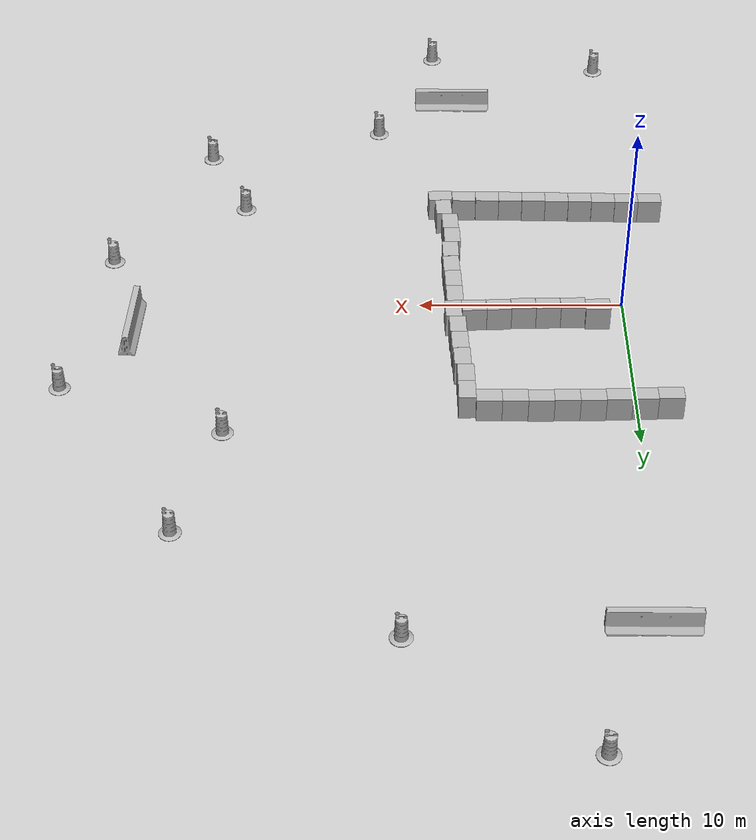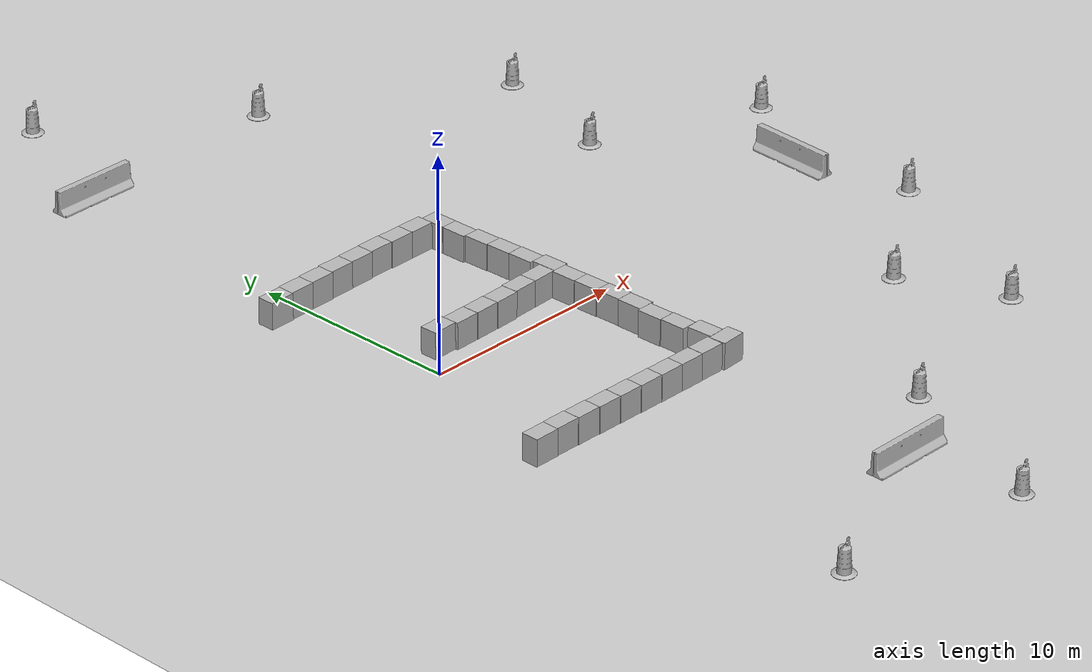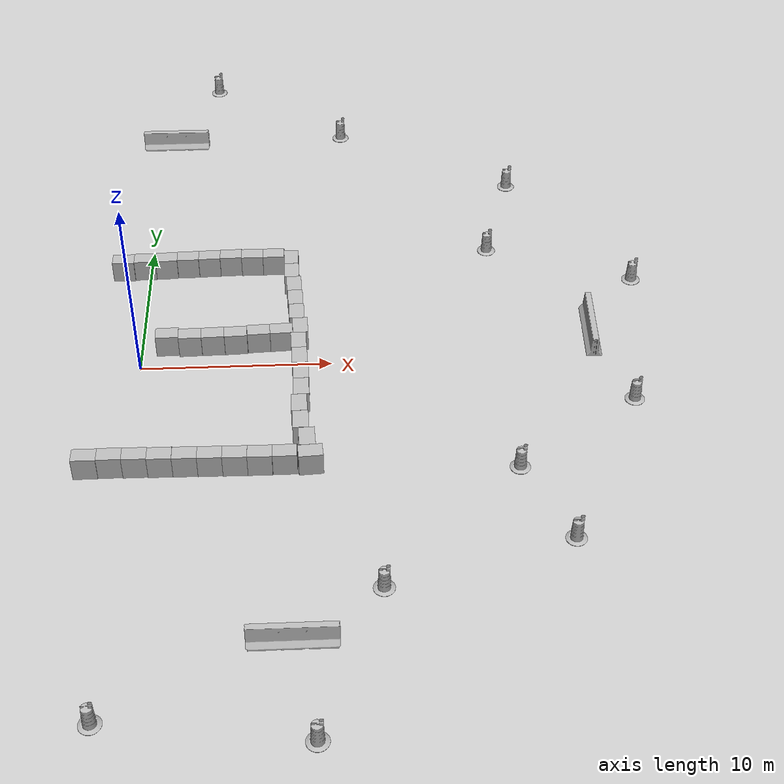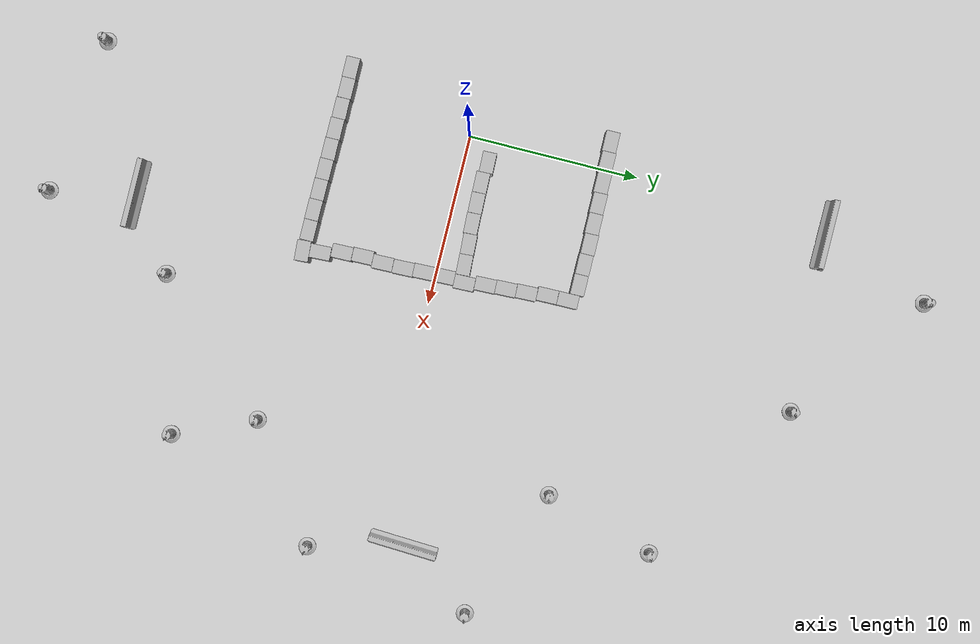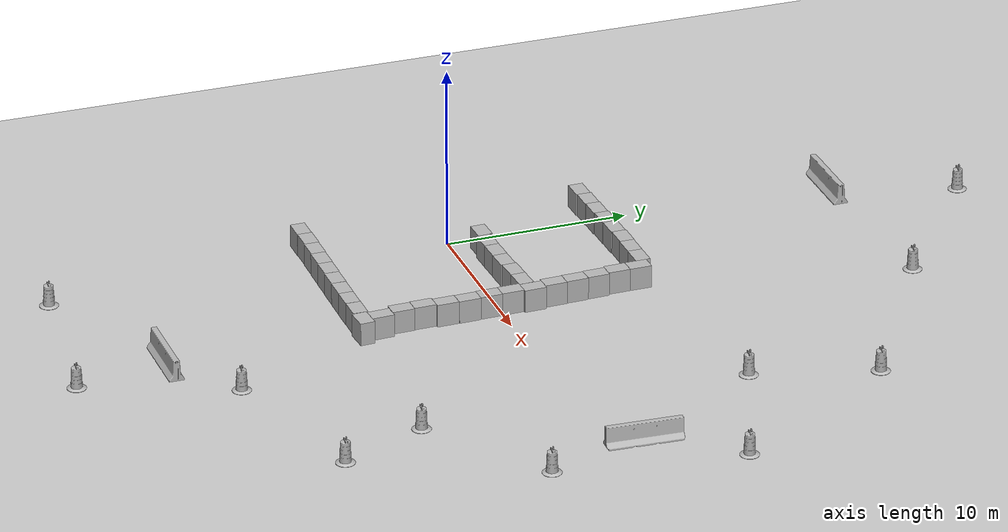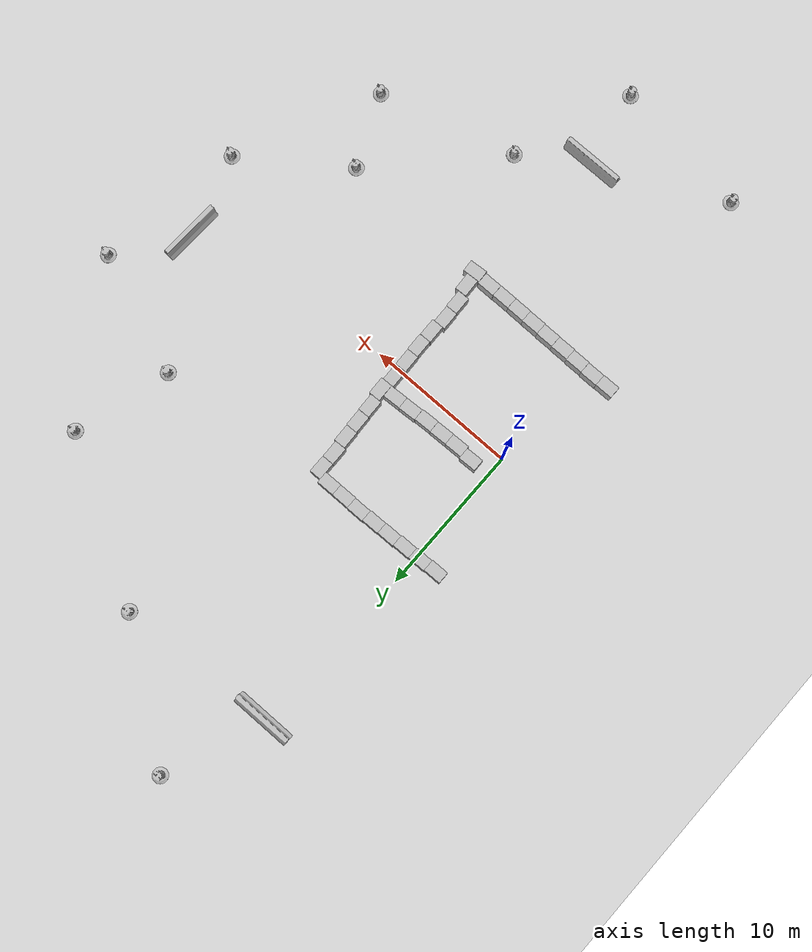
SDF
<sdf version="1.7">
 <world name="default">
  <model name="ground_plane">
   <static>1</static>
   <link name="link">
    <collision name="collision">
     <geometry><plane><normal>0 0 1</normal><size>100 100</size></plane></geometry>
     <surface><friction><ode><mu>100</mu><mu2>50</mu2></ode></friction></surface>
    </collision>
    <visual name="visual">
     <cast_shadows>0</cast_shadows>
     <geometry><plane><normal>0 0 1</normal><size>100 100</size></plane></geometry>
     <material>
      <script><uri>file://media/materials/scripts/gazebo.material</uri><name>Gazebo/Grey</name></script>
     </material>
    </visual>
    <velocity_decay><linear>0</linear><angular>0</angular></velocity_decay>
   </link>
  </model>
  <model name="Construction Barrel">
   <link name="link">
    <inertial>
     <pose>0 0 0.4 0 -0 0</pose>
     <mass>500</mass>
     <inertia><ixx>51.2096</ixx><iyy>51.2096</iyy><izz>25</izz><ixy>0</ixy><ixz>0</ixz><iyz>0</iyz></inertia>
    </inertial>
    <collision name="collision">
     <geometry><mesh><uri>model://construction_barrel/meshes/construction_barrel.dae</uri></mesh></geometry>
    </collision>
    <visual name="visual">
     <geometry><mesh><uri>model://construction_barrel/meshes/construction_barrel.dae</uri></mesh></geometry>
    </visual>
    <velocity_decay><linear>0</linear><angular>0</angular></velocity_decay>
   </link>
   <pose>-0.251054 -21.8083 0 0 0 -0.002184</pose>
   <static>0</static>
  </model>
  <model name="Construction Barrel_0">
   <link name="link">
    <inertial>
     <pose>0 0 0.4 0 -0 0</pose>
     <mass>500</mass>
     <inertia><ixx>51.2096</ixx><iyy>51.2096</iyy><izz>25</izz><ixy>0</ixy><ixz>0</ixz><iyz>0</iyz></inertia>
    </inertial>
    <collision name="collision">
     <geometry><mesh><uri>model://construction_barrel/meshes/construction_barrel.dae</uri></mesh></geometry>
    </collision>
    <visual name="visual">
     <geometry><mesh><uri>model://construction_barrel/meshes/construction_barrel.dae</uri></mesh></geometry>
    </visual>
    <velocity_decay><linear>0</linear><angular>0</angular></velocity_decay>
   </link>
   <pose>12.0468 -15.209 0 0 0 -0.002197</pose>
   <static>0</static>
  </model>
  <model name="Construction Barrel_1">
   <link name="link">
    <inertial>
     <pose>0 0 0.4 0 -0 0</pose>
     <mass>500</mass>
     <inertia><ixx>51.2096</ixx><iyy>51.2096</iyy><izz>25</izz><ixy>0</ixy><ixz>0</ixz><iyz>0</iyz></inertia>
    </inertial>
    <collision name="collision">
     <geometry><mesh><uri>model://construction_barrel/meshes/construction_barrel.dae</uri></mesh></geometry>
    </collision>
    <visual name="visual">
     <geometry><mesh><uri>model://construction_barrel/meshes/construction_barrel.dae</uri></mesh></geometry>
    </visual>
    <velocity_decay><linear>0</linear><angular>0</angular></velocity_decay>
   </link>
   <pose>18.9997 -7.99906 0 0 0 -0.00214</pose>
   <static>0</static>
  </model>
  <model name="Construction Barrel_3">
   <link name="link">
    <inertial>
     <pose>0 0 0.4 0 -0 0</pose>
     <mass>500</mass>
     <inertia><ixx>51.2096</ixx><iyy>51.2096</iyy><izz>25</izz><ixy>0</ixy><ixz>0</ixz><iyz>0</iyz></inertia>
    </inertial>
    <collision name="collision">
     <geometry><mesh><uri>model://construction_barrel/meshes/construction_barrel.dae</uri></mesh></geometry>
    </collision>
    <visual name="visual">
     <geometry><mesh><uri>model://construction_barrel/meshes/construction_barrel.dae</uri></mesh></geometry>
    </visual>
    <velocity_decay><linear>0</linear><angular>0</angular></velocity_decay>
   </link>
   <pose>19.1339 9.52281 0 0 0 -0.001991</pose>
   <static>0</static>
  </model>
  <model name="Construction Barrel_4">
   <link name="link">
    <inertial>
     <pose>0 0 0.4 0 -0 0</pose>
     <mass>500</mass>
     <inertia><ixx>51.2096</ixx><iyy>51.2096</iyy><izz>25</izz><ixy>0</ixy><ixz>0</ixz><iyz>0</iyz></inertia>
    </inertial>
    <collision name="collision">
     <geometry><mesh><uri>model://construction_barrel/meshes/construction_barrel.dae</uri></mesh></geometry>
    </collision>
    <visual name="visual">
     <geometry><mesh><uri>model://construction_barrel/meshes/construction_barrel.dae</uri></mesh></geometry>
    </visual>
    <velocity_decay><linear>0</linear><angular>0</angular></velocity_decay>
   </link>
   <pose>25.433 -3.40529 0 0 0 -0.001879</pose>
   <static>0</static>
  </model>
  <model name="Construction Barrel_10">
   <link name="link">
    <inertial>
     <pose>0 0 0.4 0 -0 0</pose>
     <mass>500</mass>
     <inertia><ixx>51.2096</ixx><iyy>51.2096</iyy><izz>25</izz><ixy>0</ixy><ixz>0</ixz><iyz>0</iyz></inertia>
    </inertial>
    <collision name="collision">
     <geometry><mesh><uri>model://construction_barrel/meshes/construction_barrel.dae</uri></mesh></geometry>
    </collision>
    <visual name="visual">
     <geometry><mesh><uri>model://construction_barrel/meshes/construction_barrel.dae</uri></mesh></geometry>
    </visual>
    <velocity_decay><linear>0</linear><angular>0</angular></velocity_decay>
   </link>
   <pose>8.99978 -22.9994 -2e-06 -7e-06 -4e-06 -0.001559</pose>
   <static>0</static>
  </model>
  <model name="Construction Barrel_11">
   <link name="link">
    <inertial>
     <pose>0 0 0.4 0 -0 0</pose>
     <mass>500</mass>
     <inertia><ixx>51.2096</ixx><iyy>51.2096</iyy><izz>25</izz><ixy>0</ixy><ixz>0</ixz><iyz>0</iyz></inertia>
    </inertial>
    <collision name="collision">
     <geometry><mesh><uri>model://construction_barrel/meshes/construction_barrel.dae</uri></mesh></geometry>
    </collision>
    <visual name="visual">
     <geometry><mesh><uri>model://construction_barrel/meshes/construction_barrel.dae</uri></mesh></geometry>
    </visual>
    <velocity_decay><linear>0</linear><angular>0</angular></velocity_decay>
   </link>
   <pose>10.9997 22.0005 -2e-06 -7e-06 -4e-06 -0.001508</pose>
   <static>0</static>
  </model>
  <model name="Construction Barrel_12">
   <link name="link">
    <inertial>
     <pose>0 0 0.4 0 -0 0</pose>
     <mass>500</mass>
     <inertia><ixx>51.2096</ixx><iyy>51.2096</iyy><izz>25</izz><ixy>0</ixy><ixz>0</ixz><iyz>0</iyz></inertia>
    </inertial>
    <collision name="collision">
     <geometry><mesh><uri>model://construction_barrel/meshes/construction_barrel.dae</uri></mesh></geometry>
    </collision>
    <visual name="visual">
     <geometry><mesh><uri>model://construction_barrel/meshes/construction_barrel.dae</uri></mesh></geometry>
    </visual>
    <velocity_decay><linear>0</linear><angular>0</angular></velocity_decay>
   </link>
   <pose>26.9997 6.44779 0 0 0 -0.001438</pose>
   <static>0</static>
  </model>
  <model name="Construction Barrel_13">
   <link name="link">
    <inertial>
     <pose>0 0 0.4 0 -0 0</pose>
     <mass>500</mass>
     <inertia><ixx>51.2096</ixx><iyy>51.2096</iyy><izz>25</izz><ixy>0</ixy><ixz>0</ixz><iyz>0</iyz></inertia>
    </inertial>
    <collision name="collision">
     <geometry><mesh><uri>model://construction_barrel/meshes/construction_barrel.dae</uri></mesh></geometry>
    </collision>
    <visual name="visual">
     <geometry><mesh><uri>model://construction_barrel/meshes/construction_barrel.dae</uri></mesh></geometry>
    </visual>
    <velocity_decay><linear>0</linear><angular>0</angular></velocity_decay>
   </link>
   <pose>21.0308 -12.6725 -1e-06 0 5e-06 -0.001347</pose>
   <static>0</static>
  </model>
  <model name="Construction Barrel_15">
   <link name="link">
    <inertial>
     <pose>0 0 0.4 0 -0 0</pose>
     <mass>500</mass>
     <inertia><ixx>51.2096</ixx><iyy>51.2096</iyy><izz>25</izz><ixy>0</ixy><ixz>0</ixz><iyz>0</iyz></inertia>
    </inertial>
    <collision name="collision">
     <geometry><mesh><uri>model://construction_barrel/meshes/construction_barrel.dae</uri></mesh></geometry>
    </collision>
    <visual name="visual">
     <geometry><mesh><uri>model://construction_barrel/meshes/construction_barrel.dae</uri></mesh></geometry>
    </visual>
    <velocity_decay><linear>0</linear><angular>0</angular></velocity_decay>
   </link>
   <pose>20.9998 16.0004 -1e-06 -0 5e-06 -0.001248</pose>
   <static>0</static>
  </model>
  <model name="Construction Barrel_16">
   <link name="link">
    <inertial>
     <pose>0 0 0.4 0 -0 0</pose>
     <mass>500</mass>
     <inertia><ixx>51.2096</ixx><iyy>51.2096</iyy><izz>25</izz><ixy>0</ixy><ixz>0</ixz><iyz>0</iyz></inertia>
    </inertial>
    <collision name="collision">
     <geometry><mesh><uri>model://construction_barrel/meshes/construction_barrel.dae</uri></mesh></geometry>
    </collision>
    <visual name="visual">
     <geometry><mesh><uri>model://construction_barrel/meshes/construction_barrel.dae</uri></mesh></geometry>
    </visual>
    <velocity_decay><linear>0</linear><angular>0</angular></velocity_decay>
   </link>
   <pose>2.99981 28.0004 -1e-06 0 5e-06 -0.001185</pose>
   <static>0</static>
  </model>
  <model name="jersey_barrier">
   <static>1</static>
   <link name="link">
    <visual name="visual">
     <geometry><mesh><uri>model://jersey_barrier/meshes/jersey_barrier.dae</uri></mesh></geometry>
    </visual>
    <collision name="upright">
     <pose>0 0 0.5715 0 -0 0</pose>
     <geometry><box><size>4.06542 0.3063 1.143</size></box></geometry>
    </collision>
    <collision name="base">
     <pose>0 0 0.032258 0 -0 0</pose>
     <geometry><box><size>4.06542 0.8107 0.064516</size></box></geometry>
    </collision>
    <collision name="base2">
     <pose>0 0 0.1 0 -0 0</pose>
     <geometry><box><size>4.06542 0.65 0.1</size></box></geometry>
    </collision>
    <collision name="base3">
     <pose>0 0 0.2 0 -0 0</pose>
     <geometry><box><size>4.06542 0.5 0.1</size></box></geometry>
    </collision>
    <collision name="left-angle">
     <pose>0 -0.224 0.2401 0.9 -0 0</pose>
     <geometry><box><size>4.06542 0.5 0.064516</size></box></geometry>
    </collision>
    <collision name="right-angle">
     <pose>0 0.224 0.2401 -0.9 0 0</pose>
     <geometry><box><size>4.06542 0.5 0.064516</size></box></geometry>
    </collision>
    <velocity_decay><linear>0</linear><angular>0</angular></velocity_decay>
   </link>
   <pose>0.597215 21.4103 0 0 -0 0</pose>
  </model>
  <model name="jersey_barrier_3">
   <static>1</static>
   <link name="link">
    <visual name="visual">
     <geometry><mesh><uri>model://jersey_barrier/meshes/jersey_barrier.dae</uri></mesh></geometry>
    </visual>
    <collision name="upright">
     <pose>0 0 0.5715 0 -0 0</pose>
     <geometry><box><size>4.06542 0.3063 1.143</size></box></geometry>
    </collision>
    <collision name="base">
     <pose>0 0 0.032258 0 -0 0</pose>
     <geometry><box><size>4.06542 0.8107 0.064516</size></box></geometry>
    </collision>
    <collision name="base2">
     <pose>0 0 0.1 0 -0 0</pose>
     <geometry><box><size>4.06542 0.65 0.1</size></box></geometry>
    </collision>
    <collision name="base3">
     <pose>0 0 0.2 0 -0 0</pose>
     <geometry><box><size>4.06542 0.5 0.1</size></box></geometry>
    </collision>
    <collision name="left-angle">
     <pose>0 -0.224 0.2401 0.9 -0 0</pose>
     <geometry><box><size>4.06542 0.5 0.064516</size></box></geometry>
    </collision>
    <collision name="right-angle">
     <pose>0 0.224 0.2401 -0.9 0 0</pose>
     <geometry><box><size>4.06542 0.5 0.064516</size></box></geometry>
    </collision>
    <velocity_decay><linear>0</linear><angular>0</angular></velocity_decay>
   </link>
   <pose>8 -18 0 0 -0 0</pose>
  </model>
  <model name="jersey_barrier_4">
   <static>1</static>
   <link name="link">
    <visual name="visual">
     <geometry><mesh><uri>model://jersey_barrier/meshes/jersey_barrier.dae</uri></mesh></geometry>
    </visual>
    <collision name="upright">
     <pose>0 0 0.5715 0 -0 0</pose>
     <geometry><box><size>4.06542 0.3063 1.143</size></box></geometry>
    </collision>
    <collision name="base">
     <pose>0 0 0.032258 0 -0 0</pose>
     <geometry><box><size>4.06542 0.8107 0.064516</size></box></geometry>
    </collision>
    <collision name="base2">
     <pose>0 0 0.1 0 -0 0</pose>
     <geometry><box><size>4.06542 0.65 0.1</size></box></geometry>
    </collision>
    <collision name="base3">
     <pose>0 0 0.2 0 -0 0</pose>
     <geometry><box><size>4.06542 0.5 0.1</size></box></geometry>
    </collision>
    <collision name="left-angle">
     <pose>0 -0.224 0.2401 0.9 -0 0</pose>
     <geometry><box><size>4.06542 0.5 0.064516</size></box></geometry>
    </collision>
    <collision name="right-angle">
     <pose>0 0.224 0.2401 -0.9 0 0</pose>
     <geometry><box><size>4.06542 0.5 0.064516</size></box></geometry>
    </collision>
    <velocity_decay><linear>0</linear><angular>0</angular></velocity_decay>
   </link>
   <pose>24 2 0 0 -0 1.52298</pose>
  </model>
  <model name="Big box 4">
   <pose>-0.791601 -7.48336 0.624645 0.000738 9.8e-05 0.00236</pose>
   <static>0</static>
   <link name="link">
    <inertial>
     <mass>40</mass>
     <inertia><ixx>1</ixx><ixy>0</ixy><ixz>0</ixz><iyy>1</iyy><iyz>0</iyz><izz>1</izz></inertia>
    </inertial>
    <collision name="collision">
     <geometry><box><size>1.2 0.8 1.25</size></box></geometry>
     <surface><contact><ode><max_vel>0.1</max_vel><min_depth>0.001</min_depth></ode></contact></surface>
    </collision>
    <visual name="visual">
     <geometry><mesh><uri>model://big_box4/meshes/big_box.dae</uri></mesh></geometry>
    </visual>
   </link>
  </model>
  <model name="Big box 4_clone">
   <pose>0.409447 -7.50658 0.624907 -0.000228 -2e-06 0.005854</pose>
   <static>0</static>
   <link name="link">
    <inertial>
     <mass>40</mass>
     <inertia><ixx>1</ixx><ixy>0</ixy><ixz>0</ixz><iyy>1</iyy><iyz>0</iyz><izz>1</izz></inertia>
    </inertial>
    <collision name="collision">
     <geometry><box><size>1.2 0.8 1.25</size></box></geometry>
     <surface><contact><ode><max_vel>0.1</max_vel><min_depth>0.001</min_depth></ode></contact></surface>
    </collision>
    <visual name="visual">
     <geometry><mesh><uri>model://big_box4/meshes/big_box.dae</uri></mesh></geometry>
    </visual>
   </link>
  </model>
  <model name="Big box 4_clone_0">
   <pose>1.60953 -7.5337 0.624856 0.00057 0.000152 0.005839</pose>
   <static>0</static>
   <link name="link">
    <inertial>
     <mass>40</mass>
     <inertia><ixx>1</ixx><ixy>0</ixy><ixz>0</ixz><iyy>1</iyy><iyz>0</iyz><izz>1</izz></inertia>
    </inertial>
    <collision name="collision">
     <geometry><box><size>1.2 0.8 1.25</size></box></geometry>
     <surface><contact><ode><max_vel>0.1</max_vel><min_depth>0.001</min_depth></ode></contact></surface>
    </collision>
    <visual name="visual">
     <geometry><mesh><uri>model://big_box4/meshes/big_box.dae</uri></mesh></geometry>
    </visual>
   </link>
  </model>
  <model name="Big box 4_clone_1">
   <pose>2.81246 -7.54962 0.624549 0 0.000466 0.002697</pose>
   <static>0</static>
   <link name="link">
    <inertial>
     <mass>40</mass>
     <inertia><ixx>1</ixx><ixy>0</ixy><ixz>0</ixz><iyy>1</iyy><iyz>0</iyz><izz>1</izz></inertia>
    </inertial>
    <collision name="collision">
     <geometry><box><size>1.2 0.8 1.25</size></box></geometry>
     <surface><contact><ode><max_vel>0.1</max_vel><min_depth>0.001</min_depth></ode></contact></surface>
    </collision>
    <visual name="visual">
     <geometry><mesh><uri>model://big_box4/meshes/big_box.dae</uri></mesh></geometry>
    </visual>
   </link>
  </model>
  <model name="Big box 4_clone_2">
   <pose>4.0136 -7.574 0.624498 0 -0.000831 0.002003</pose>
   <static>0</static>
   <link name="link">
    <inertial>
     <mass>40</mass>
     <inertia><ixx>1</ixx><ixy>0</ixy><ixz>0</ixz><iyy>1</iyy><iyz>0</iyz><izz>1</izz></inertia>
    </inertial>
    <collision name="collision">
     <geometry><box><size>1.2 0.8 1.25</size></box></geometry>
     <surface><contact><ode><max_vel>0.1</max_vel><min_depth>0.001</min_depth></ode></contact></surface>
    </collision>
    <visual name="visual">
     <geometry><mesh><uri>model://big_box4/meshes/big_box.dae</uri></mesh></geometry>
    </visual>
   </link>
  </model>
  <model name="Big box 4_clone_3">
   <pose>5.21501 -7.59105 0.624499 0 -0.000831 -0.00103</pose>
   <static>0</static>
   <link name="link">
    <inertial>
     <mass>40</mass>
     <inertia><ixx>1</ixx><ixy>0</ixy><ixz>0</ixz><iyy>1</iyy><iyz>0</iyz><izz>1</izz></inertia>
    </inertial>
    <collision name="collision">
     <geometry><box><size>1.2 0.8 1.25</size></box></geometry>
     <surface><contact><ode><max_vel>0.1</max_vel><min_depth>0.001</min_depth></ode></contact></surface>
    </collision>
    <visual name="visual">
     <geometry><mesh><uri>model://big_box4/meshes/big_box.dae</uri></mesh></geometry>
    </visual>
   </link>
  </model>
  <model name="Big box 4_clone_4">
   <pose>6.41592 -7.60311 0.6245 -0.001244 -3e-06 -0.001878</pose>
   <static>0</static>
   <link name="link">
    <inertial>
     <mass>40</mass>
     <inertia><ixx>1</ixx><ixy>0</ixy><ixz>0</ixz><iyy>1</iyy><iyz>0</iyz><izz>1</izz></inertia>
    </inertial>
    <collision name="collision">
     <geometry><box><size>1.2 0.8 1.25</size></box></geometry>
     <surface><contact><ode><max_vel>0.1</max_vel><min_depth>0.001</min_depth></ode></contact></surface>
    </collision>
    <visual name="visual">
     <geometry><mesh><uri>model://big_box4/meshes/big_box.dae</uri></mesh></geometry>
    </visual>
   </link>
  </model>
  <model name="Big box 4_clone_5">
   <pose>-1.99145 -7.50285 0.624587 -0.001032 0 0.001057</pose>
   <static>0</static>
   <link name="link">
    <inertial>
     <mass>40</mass>
     <inertia><ixx>1</ixx><ixy>0</ixy><ixz>0</ixz><iyy>1</iyy><iyz>0</iyz><izz>1</izz></inertia>
    </inertial>
    <collision name="collision">
     <geometry><box><size>1.2 0.8 1.25</size></box></geometry>
     <surface><contact><ode><max_vel>0.1</max_vel><min_depth>0.001</min_depth></ode></contact></surface>
    </collision>
    <visual name="visual">
     <geometry><mesh><uri>model://big_box4/meshes/big_box.dae</uri></mesh></geometry>
    </visual>
   </link>
  </model>
  <model name="Big box 4_clone_4_clone">
   <pose>7.62341 -7.59497 0.624499 -0.001241 -6e-06 -0.002668</pose>
   <static>0</static>
   <link name="link">
    <inertial>
     <mass>40</mass>
     <inertia><ixx>1</ixx><ixy>0</ixy><ixz>0</ixz><iyy>1</iyy><iyz>0</iyz><izz>1</izz></inertia>
    </inertial>
    <collision name="collision">
     <geometry><box><size>1.2 0.8 1.25</size></box></geometry>
     <surface><contact><ode><max_vel>0.1</max_vel><min_depth>0.001</min_depth></ode></contact></surface>
    </collision>
    <visual name="visual">
     <geometry><mesh><uri>model://big_box4/meshes/big_box.dae</uri></mesh></geometry>
    </visual>
   </link>
  </model>
  <model name="Big box 4_clone_4_clone_0">
   <pose>8.8511 -7.64855 0.624536 0 0.000758 0.065908</pose>
   <static>0</static>
   <link name="link">
    <inertial>
     <mass>40</mass>
     <inertia><ixx>1</ixx><ixy>0</ixy><ixz>0</ixz><iyy>1</iyy><iyz>0</iyz><izz>1</izz></inertia>
    </inertial>
    <collision name="collision">
     <geometry><box><size>1.2 0.8 1.25</size></box></geometry>
     <surface><contact><ode><max_vel>0.1</max_vel><min_depth>0.001</min_depth></ode></contact></surface>
    </collision>
    <visual name="visual">
     <geometry><mesh><uri>model://big_box4/meshes/big_box.dae</uri></mesh></geometry>
    </visual>
   </link>
  </model>
  <model name="Big box 4_clone_4_clone_clone">
   <pose>8.68701 -6.65037 0.624904 -0 0.00015 1.61916</pose>
   <static>0</static>
   <link name="link">
    <inertial>
     <mass>40</mass>
     <inertia><ixx>1</ixx><ixy>0</ixy><ixz>0</ixz><iyy>1</iyy><iyz>0</iyz><izz>1</izz></inertia>
    </inertial>
    <collision name="collision">
     <geometry><box><size>1.2 0.8 1.25</size></box></geometry>
     <surface><contact><ode><max_vel>0.1</max_vel><min_depth>0.001</min_depth></ode></contact></surface>
    </collision>
    <visual name="visual">
     <geometry><mesh><uri>model://big_box4/meshes/big_box.dae</uri></mesh></geometry>
    </visual>
   </link>
  </model>
  <model name="Big box 4_clone_4_clone_clone_clone">
   <pose>8.38359 -5.44205 0.624623 0 -0.000625 1.59226</pose>
   <static>0</static>
   <link name="link">
    <inertial>
     <mass>40</mass>
     <inertia><ixx>1</ixx><ixy>0</ixy><ixz>0</ixz><iyy>1</iyy><iyz>0</iyz><izz>1</izz></inertia>
    </inertial>
    <collision name="collision">
     <geometry><box><size>1.2 0.8 1.25</size></box></geometry>
     <surface><contact><ode><max_vel>0.1</max_vel><min_depth>0.001</min_depth></ode></contact></surface>
    </collision>
    <visual name="visual">
     <geometry><mesh><uri>model://big_box4/meshes/big_box.dae</uri></mesh></geometry>
    </visual>
   </link>
  </model>
  <model name="Big box 4_clone_4_clone_clone_clone_0">
   <pose>8.31609 -4.23918 0.624731 -0.000662 2e-06 1.59345</pose>
   <static>0</static>
   <link name="link">
    <inertial>
     <mass>40</mass>
     <inertia><ixx>1</ixx><ixy>0</ixy><ixz>0</ixz><iyy>1</iyy><iyz>0</iyz><izz>1</izz></inertia>
    </inertial>
    <collision name="collision">
     <geometry><box><size>1.2 0.8 1.25</size></box></geometry>
     <surface><contact><ode><max_vel>0.1</max_vel><min_depth>0.001</min_depth></ode></contact></surface>
    </collision>
    <visual name="visual">
     <geometry><mesh><uri>model://big_box4/meshes/big_box.dae</uri></mesh></geometry>
    </visual>
   </link>
  </model>
  <model name="Big box 4_clone_4_clone_clone_clone_1">
   <pose>8.41796 -3.03449 0.624739 -0.000652 1e-06 1.59515</pose>
   <static>0</static>
   <link name="link">
    <inertial>
     <mass>40</mass>
     <inertia><ixx>1</ixx><ixy>0</ixy><ixz>0</ixz><iyy>1</iyy><iyz>0</iyz><izz>1</izz></inertia>
    </inertial>
    <collision name="collision">
     <geometry><box><size>1.2 0.8 1.25</size></box></geometry>
     <surface><contact><ode><max_vel>0.1</max_vel><min_depth>0.001</min_depth></ode></contact></surface>
    </collision>
    <visual name="visual">
     <geometry><mesh><uri>model://big_box4/meshes/big_box.dae</uri></mesh></geometry>
    </visual>
   </link>
  </model>
  <model name="Big box 4_clone_4_clone_clone_clone_2">
   <pose>8.40951 -1.83193 0.624634 0 0.000603 1.60014</pose>
   <static>0</static>
   <link name="link">
    <inertial>
     <mass>40</mass>
     <inertia><ixx>1</ixx><ixy>0</ixy><ixz>0</ixz><iyy>1</iyy><iyz>0</iyz><izz>1</izz></inertia>
    </inertial>
    <collision name="collision">
     <geometry><box><size>1.2 0.8 1.25</size></box></geometry>
     <surface><contact><ode><max_vel>0.1</max_vel><min_depth>0.001</min_depth></ode></contact></surface>
    </collision>
    <visual name="visual">
     <geometry><mesh><uri>model://big_box4/meshes/big_box.dae</uri></mesh></geometry>
    </visual>
   </link>
  </model>
  <model name="Big box 4_clone_4_clone_clone_clone_3">
   <pose>8.34477 -0.632323 0.624739 0 0.000431 1.59977</pose>
   <static>0</static>
   <link name="link">
    <inertial>
     <mass>40</mass>
     <inertia><ixx>1</ixx><ixy>0</ixy><ixz>0</ixz><iyy>1</iyy><iyz>0</iyz><izz>1</izz></inertia>
    </inertial>
    <collision name="collision">
     <geometry><box><size>1.2 0.8 1.25</size></box></geometry>
     <surface><contact><ode><max_vel>0.1</max_vel><min_depth>0.001</min_depth></ode></contact></surface>
    </collision>
    <visual name="visual">
     <geometry><mesh><uri>model://big_box4/meshes/big_box.dae</uri></mesh></geometry>
    </visual>
   </link>
  </model>
  <model name="Big box 4_clone_4_clone_clone_clone_4">
   <pose>8.30201 0.567221 0.624811 -0.000457 1e-05 1.59968</pose>
   <static>0</static>
   <link name="link">
    <inertial>
     <mass>40</mass>
     <inertia><ixx>1</ixx><ixy>0</ixy><ixz>0</ixz><iyy>1</iyy><iyz>0</iyz><izz>1</izz></inertia>
    </inertial>
    <collision name="collision">
     <geometry><box><size>1.2 0.8 1.25</size></box></geometry>
     <surface><contact><ode><max_vel>0.1</max_vel><min_depth>0.001</min_depth></ode></contact></surface>
    </collision>
    <visual name="visual">
     <geometry><mesh><uri>model://big_box4/meshes/big_box.dae</uri></mesh></geometry>
    </visual>
   </link>
  </model>
  <model name="Big box 4_clone_4_clone_clone_clone_5">
   <pose>8.38626 1.77037 0.624724 0.000684 -3e-06 1.59967</pose>
   <static>0</static>
   <link name="link">
    <inertial>
     <mass>40</mass>
     <inertia><ixx>1</ixx><ixy>0</ixy><ixz>0</ixz><iyy>1</iyy><iyz>0</iyz><izz>1</izz></inertia>
    </inertial>
    <collision name="collision">
     <geometry><box><size>1.2 0.8 1.25</size></box></geometry>
     <surface><contact><ode><max_vel>0.1</max_vel><min_depth>0.001</min_depth></ode></contact></surface>
    </collision>
    <visual name="visual">
     <geometry><mesh><uri>model://big_box4/meshes/big_box.dae</uri></mesh></geometry>
    </visual>
   </link>
  </model>
  <model name="Big box 4_clone_4_clone_clone_clone_6">
   <pose>8.20042 2.96837 0.62473 -0.000667 3e-06 1.5991</pose>
   <static>0</static>
   <link name="link">
    <inertial>
     <mass>40</mass>
     <inertia><ixx>1</ixx><ixy>0</ixy><ixz>0</ixz><iyy>1</iyy><iyz>0</iyz><izz>1</izz></inertia>
    </inertial>
    <collision name="collision">
     <geometry><box><size>1.2 0.8 1.25</size></box></geometry>
     <surface><contact><ode><max_vel>0.1</max_vel><min_depth>0.001</min_depth></ode></contact></surface>
    </collision>
    <visual name="visual">
     <geometry><mesh><uri>model://big_box4/meshes/big_box.dae</uri></mesh></geometry>
    </visual>
   </link>
  </model>
  <model name="Big box 4_clone_4_clone_clone_clone_7">
   <pose>8.13369 4.16955 0.624613 0 -0.000632 1.60201</pose>
   <static>0</static>
   <link name="link">
    <inertial>
     <mass>40</mass>
     <inertia><ixx>1</ixx><ixy>0</ixy><ixz>0</ixz><iyy>1</iyy><iyz>0</iyz><izz>1</izz></inertia>
    </inertial>
    <collision name="collision">
     <geometry><box><size>1.2 0.8 1.25</size></box></geometry>
     <surface><contact><ode><max_vel>0.1</max_vel><min_depth>0.001</min_depth></ode></contact></surface>
    </collision>
    <visual name="visual">
     <geometry><mesh><uri>model://big_box4/meshes/big_box.dae</uri></mesh></geometry>
    </visual>
   </link>
  </model>
  <model name="Big box 4_clone_4_clone_clone_clone_8">
   <pose>8.06116 5.36888 0.624682 0.000794 0 1.60084</pose>
   <static>0</static>
   <link name="link">
    <inertial>
     <mass>40</mass>
     <inertia><ixx>1</ixx><ixy>0</ixy><ixz>0</ixz><iyy>1</iyy><iyz>0</iyz><izz>1</izz></inertia>
    </inertial>
    <collision name="collision">
     <geometry><box><size>1.2 0.8 1.25</size></box></geometry>
     <surface><contact><ode><max_vel>0.1</max_vel><min_depth>0.001</min_depth></ode></contact></surface>
    </collision>
    <visual name="visual">
     <geometry><mesh><uri>model://big_box4/meshes/big_box.dae</uri></mesh></geometry>
    </visual>
   </link>
  </model>
  <model name="Big box 4_clone_4_clone_clone_clone_9">
   <pose>7.92232 6.57015 0.624914 0.00032 -8e-05 1.58875</pose>
   <static>0</static>
   <link name="link">
    <inertial>
     <mass>40</mass>
     <inertia><ixx>1</ixx><ixy>0</ixy><ixz>0</ixz><iyy>1</iyy><iyz>0</iyz><izz>1</izz></inertia>
    </inertial>
    <collision name="collision">
     <geometry><box><size>1.2 0.8 1.25</size></box></geometry>
     <surface><contact><ode><max_vel>0.1</max_vel><min_depth>0.001</min_depth></ode></contact></surface>
    </collision>
    <visual name="visual">
     <geometry><mesh><uri>model://big_box4/meshes/big_box.dae</uri></mesh></geometry>
    </visual>
   </link>
  </model>
  <model name="Big box 4_clone_4_clone_clone_clone_10">
   <pose>7.90783 7.77366 0.624755 0.000612 3e-06 1.5796</pose>
   <static>0</static>
   <link name="link">
    <inertial>
     <mass>40</mass>
     <inertia><ixx>1</ixx><ixy>0</ixy><ixz>0</ixz><iyy>1</iyy><iyz>0</iyz><izz>1</izz></inertia>
    </inertial>
    <collision name="collision">
     <geometry><box><size>1.2 0.8 1.25</size></box></geometry>
     <surface><contact><ode><max_vel>0.1</max_vel><min_depth>0.001</min_depth></ode></contact></surface>
    </collision>
    <visual name="visual">
     <geometry><mesh><uri>model://big_box4/meshes/big_box.dae</uri></mesh></geometry>
    </visual>
   </link>
  </model>
  <model name="Big box 4_clone_6_clone">
   <pose>6.90402 8.18773 0.624917 -0.000278 0.000323 0.008734</pose>
   <static>0</static>
   <link name="link">
    <inertial>
     <mass>40</mass>
     <inertia><ixx>1</ixx><ixy>0</ixy><ixz>0</ixz><iyy>1</iyy><iyz>0</iyz><izz>1</izz></inertia>
    </inertial>
    <collision name="collision">
     <geometry><box><size>1.2 0.8 1.25</size></box></geometry>
     <surface><contact><ode><max_vel>0.1</max_vel><min_depth>0.001</min_depth></ode></contact></surface>
    </collision>
    <visual name="visual">
     <geometry><mesh><uri>model://big_box4/meshes/big_box.dae</uri></mesh></geometry>
    </visual>
   </link>
  </model>
  <model name="Big box 4_clone_6_clone_0">
   <pose>5.70399 8.18441 0.624936 -0.000747 0.000435 0.006702</pose>
   <static>0</static>
   <link name="link">
    <inertial>
     <mass>40</mass>
     <inertia><ixx>1</ixx><ixy>0</ixy><ixz>0</ixz><iyy>1</iyy><iyz>0</iyz><izz>1</izz></inertia>
    </inertial>
    <collision name="collision">
     <geometry><box><size>1.2 0.8 1.25</size></box></geometry>
     <surface><contact><ode><max_vel>0.1</max_vel><min_depth>0.001</min_depth></ode></contact></surface>
    </collision>
    <visual name="visual">
     <geometry><mesh><uri>model://big_box4/meshes/big_box.dae</uri></mesh></geometry>
    </visual>
   </link>
  </model>
  <model name="Big box 4_clone_6_clone_1">
   <pose>4.50413 8.20119 0.624921 -0.00018 3.6e-05 0.005648</pose>
   <static>0</static>
   <link name="link">
    <inertial>
     <mass>40</mass>
     <inertia><ixx>1</ixx><ixy>0</ixy><ixz>0</ixz><iyy>1</iyy><iyz>0</iyz><izz>1</izz></inertia>
    </inertial>
    <collision name="collision">
     <geometry><box><size>1.2 0.8 1.25</size></box></geometry>
     <surface><contact><ode><max_vel>0.1</max_vel><min_depth>0.001</min_depth></ode></contact></surface>
    </collision>
    <visual name="visual">
     <geometry><mesh><uri>model://big_box4/meshes/big_box.dae</uri></mesh></geometry>
    </visual>
   </link>
  </model>
  <model name="Big box 4_clone_6_clone_2">
   <pose>3.30461 8.15334 0.624835 -0 0.000275 0.005273</pose>
   <static>0</static>
   <link name="link">
    <inertial>
     <mass>40</mass>
     <inertia><ixx>1</ixx><ixy>0</ixy><ixz>0</ixz><iyy>1</iyy><iyz>0</iyz><izz>1</izz></inertia>
    </inertial>
    <collision name="collision">
     <geometry><box><size>1.2 0.8 1.25</size></box></geometry>
     <surface><contact><ode><max_vel>0.1</max_vel><min_depth>0.001</min_depth></ode></contact></surface>
    </collision>
    <visual name="visual">
     <geometry><mesh><uri>model://big_box4/meshes/big_box.dae</uri></mesh></geometry>
    </visual>
   </link>
  </model>
  <model name="Big box 4_clone_6_clone_3">
   <pose>2.10502 8.12103 0.624928 -0.000383 -0.000135 0.005228</pose>
   <static>0</static>
   <link name="link">
    <inertial>
     <mass>40</mass>
     <inertia><ixx>1</ixx><ixy>0</ixy><ixz>0</ixz><iyy>1</iyy><iyz>0</iyz><izz>1</izz></inertia>
    </inertial>
    <collision name="collision">
     <geometry><box><size>1.2 0.8 1.25</size></box></geometry>
     <surface><contact><ode><max_vel>0.1</max_vel><min_depth>0.001</min_depth></ode></contact></surface>
    </collision>
    <visual name="visual">
     <geometry><mesh><uri>model://big_box4/meshes/big_box.dae</uri></mesh></geometry>
    </visual>
   </link>
  </model>
  <model name="Big box 4_clone_6_clone_4">
   <pose>0.90542 8.06358 0.624986 1e-06 2e-05 0.005375</pose>
   <static>0</static>
   <link name="link">
    <inertial>
     <mass>40</mass>
     <inertia><ixx>1</ixx><ixy>0</ixy><ixz>0</ixz><iyy>1</iyy><iyz>0</iyz><izz>1</izz></inertia>
    </inertial>
    <collision name="collision">
     <geometry><box><size>1.2 0.8 1.25</size></box></geometry>
     <surface><contact><ode><max_vel>0.1</max_vel><min_depth>0.001</min_depth></ode></contact></surface>
    </collision>
    <visual name="visual">
     <geometry><mesh><uri>model://big_box4/meshes/big_box.dae</uri></mesh></geometry>
    </visual>
   </link>
  </model>
  <model name="Big box 4_clone_6_clone_5">
   <pose>-0.294356 8.02027 0.624875 0.000296 1e-06 0.005384</pose>
   <static>0</static>
   <link name="link">
    <inertial>
     <mass>40</mass>
     <inertia><ixx>1</ixx><ixy>0</ixy><ixz>0</ixz><iyy>1</iyy><iyz>0</iyz><izz>1</izz></inertia>
    </inertial>
    <collision name="collision">
     <geometry><box><size>1.2 0.8 1.25</size></box></geometry>
     <surface><contact><ode><max_vel>0.1</max_vel><min_depth>0.001</min_depth></ode></contact></surface>
    </collision>
    <visual name="visual">
     <geometry><mesh><uri>model://big_box4/meshes/big_box.dae</uri></mesh></geometry>
    </visual>
   </link>
  </model>
  <model name="Big box 4_clone_6_clone_6">
   <pose>-1.49418 7.96627 0.624943 0 9.3e-05 0.005503</pose>
   <static>0</static>
   <link name="link">
    <inertial>
     <mass>40</mass>
     <inertia><ixx>1</ixx><ixy>0</ixy><ixz>0</ixz><iyy>1</iyy><iyz>0</iyz><izz>1</izz></inertia>
    </inertial>
    <collision name="collision">
     <geometry><box><size>1.2 0.8 1.25</size></box></geometry>
     <surface><contact><ode><max_vel>0.1</max_vel><min_depth>0.001</min_depth></ode></contact></surface>
    </collision>
    <visual name="visual">
     <geometry><mesh><uri>model://big_box4/meshes/big_box.dae</uri></mesh></geometry>
    </visual>
   </link>
  </model>
  <model name="Big box 4_clone_2_clone">
   <pose>7.38119 1.53523 0.624616 0 0.00063 0.052884</pose>
   <static>0</static>
   <link name="link">
    <inertial>
     <mass>40</mass>
     <inertia><ixx>1</ixx><ixy>0</ixy><ixz>0</ixz><iyy>1</iyy><iyz>0</iyz><izz>1</izz></inertia>
    </inertial>
    <collision name="collision">
     <geometry><box><size>1.2 0.8 1.25</size></box></geometry>
     <surface><contact><ode><max_vel>0.1</max_vel><min_depth>0.001</min_depth></ode></contact></surface>
    </collision>
    <visual name="visual">
     <geometry><mesh><uri>model://big_box4/meshes/big_box.dae</uri></mesh></geometry>
    </visual>
   </link>
  </model>
  <model name="Big box 4_clone_2_clone_clone">
   <pose>6.18192 1.47983 0.624573 -0 0.000699 0.052516</pose>
   <static>0</static>
   <link name="link">
    <inertial>
     <mass>40</mass>
     <inertia><ixx>1</ixx><ixy>0</ixy><ixz>0</ixz><iyy>1</iyy><iyz>0</iyz><izz>1</izz></inertia>
    </inertial>
    <collision name="collision">
     <geometry><box><size>1.2 0.8 1.25</size></box></geometry>
     <surface><contact><ode><max_vel>0.1</max_vel><min_depth>0.001</min_depth></ode></contact></surface>
    </collision>
    <visual name="visual">
     <geometry><mesh><uri>model://big_box4/meshes/big_box.dae</uri></mesh></geometry>
    </visual>
   </link>
  </model>
  <model name="Big box 4_clone_2_clone_clone_0">
   <pose>4.98074 1.38092 0.624499 -1e-06 0.000831 0.040989</pose>
   <static>0</static>
   <link name="link">
    <inertial>
     <mass>40</mass>
     <inertia><ixx>1</ixx><ixy>0</ixy><ixz>0</ixz><iyy>1</iyy><iyz>0</iyz><izz>1</izz></inertia>
    </inertial>
    <collision name="collision">
     <geometry><box><size>1.2 0.8 1.25</size></box></geometry>
     <surface><contact><ode><max_vel>0.1</max_vel><min_depth>0.001</min_depth></ode></contact></surface>
    </collision>
    <visual name="visual">
     <geometry><mesh><uri>model://big_box4/meshes/big_box.dae</uri></mesh></geometry>
    </visual>
   </link>
  </model>
  <model name="Big box 4_clone_2_clone_clone_1">
   <pose>3.77883 1.35058 0.624863 -0 0.000219 0.034418</pose>
   <static>0</static>
   <link name="link">
    <inertial>
     <mass>40</mass>
     <inertia><ixx>1</ixx><ixy>0</ixy><ixz>0</ixz><iyy>1</iyy><iyz>0</iyz><izz>1</izz></inertia>
    </inertial>
    <collision name="collision">
     <geometry><box><size>1.2 0.8 1.25</size></box></geometry>
     <surface><contact><ode><max_vel>0.1</max_vel><min_depth>0.001</min_depth></ode></contact></surface>
    </collision>
    <visual name="visual">
     <geometry><mesh><uri>model://big_box4/meshes/big_box.dae</uri></mesh></geometry>
    </visual>
   </link>
  </model>
  <model name="Big box 4_clone_2_clone_clone_2">
   <pose>2.57689 1.32185 0.624916 -0.0002 -0 0.02897</pose>
   <static>0</static>
   <link name="link">
    <inertial>
     <mass>40</mass>
     <inertia><ixx>1</ixx><ixy>0</ixy><ixz>0</ixz><iyy>1</iyy><iyz>0</iyz><izz>1</izz></inertia>
    </inertial>
    <collision name="collision">
     <geometry><box><size>1.2 0.8 1.25</size></box></geometry>
     <surface><contact><ode><max_vel>0.1</max_vel><min_depth>0.001</min_depth></ode></contact></surface>
    </collision>
    <visual name="visual">
     <geometry><mesh><uri>model://big_box4/meshes/big_box.dae</uri></mesh></geometry>
    </visual>
   </link>
  </model>
  <model name="Big box 4_clone_2_clone_clone_3">
   <pose>1.37306 1.40985 0.624496 -0 -0.000827 0.028117</pose>
   <static>0</static>
   <link name="link">
    <inertial>
     <mass>40</mass>
     <inertia><ixx>1</ixx><ixy>0</ixy><ixz>0</ixz><iyy>1</iyy><iyz>0</iyz><izz>1</izz></inertia>
    </inertial>
    <collision name="collision">
     <geometry><box><size>1.2 0.8 1.25</size></box></geometry>
     <surface><contact><ode><max_vel>0.1</max_vel><min_depth>0.001</min_depth></ode></contact></surface>
    </collision>
    <visual name="visual">
     <geometry><mesh><uri>model://big_box4/meshes/big_box.dae</uri></mesh></geometry>
    </visual>
   </link>
  </model>
 </world>
</sdf>
